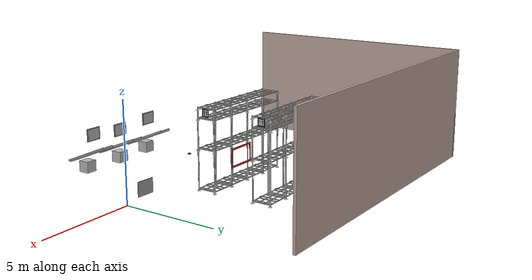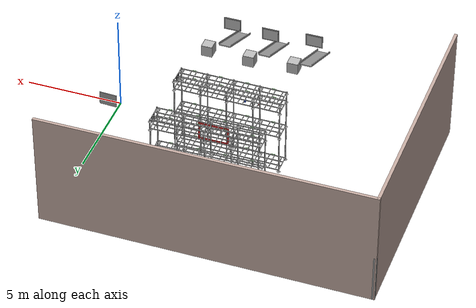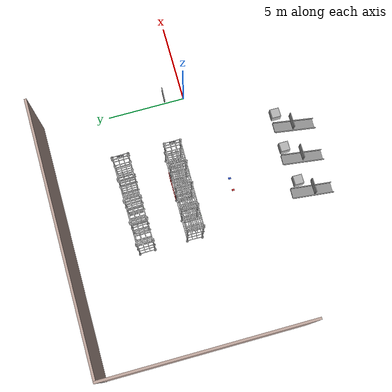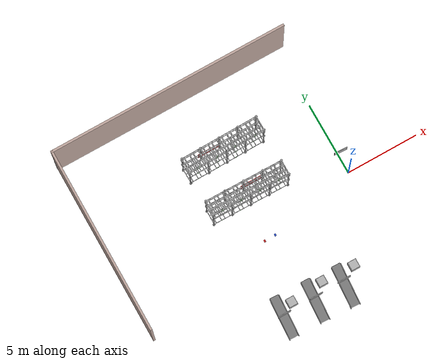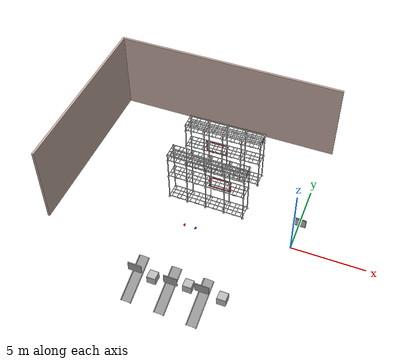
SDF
<sdf version="1.5">
 <world name="default">
  <spherical_coordinates>
   <latitude_deg>48.878922</latitude_deg>
   <longitude_deg>2.367782</longitude_deg>
  </spherical_coordinates>
  <physics type="ode">
   <real_time_update_rate>1000</real_time_update_rate>
   <max_step_size>0.001</max_step_size>
   <real_time_factor>1.0</real_time_factor>
   <max_contacts>20</max_contacts>
   <gravity>0 0 -9.81</gravity>
   <magnetic_field>0.1062e-6 20.8038e-6 -43.2881e-6</magnetic_field>
   <ode>
    <solver>
     <type>world</type>
     <min_step_size>0.0001</min_step_size>
     <iters>50</iters>
     <precon_iters>0</precon_iters>
     <sor>1.4</sor>
     <use_dynamic_moi_rescaling>1</use_dynamic_moi_rescaling>
    </solver>
    <constraints>
     <cfm>0</cfm>
     <erp>0.2</erp>
     <contact_max_correcting_vel>100.0</contact_max_correcting_vel>
     <contact_surface_layer>0.001</contact_surface_layer>
    </constraints>
   </ode>
  </physics>
  <atmosphere type="adiabatic">
   <temperature>298.15</temperature>
   <pressure>101325</pressure>
   <temperature_gradient>-0.0065</temperature_gradient>
  </atmosphere>
  <plugin name="fwman" filename="libsphinx_fwman.so">
   <spawn_point name="default"><pose>0 0 0.2 0 0 0</pose></spawn_point>
  </plugin>
  <plugin name="wind" filename="libsphinx_wind.so">
   <magnitude_mean>0.0</magnitude_mean>
   <direction_mean>0.0</direction_mean>
   <elevation_mean>0.0</elevation_mean>
   <magnitude_time_for_rise>10.0</magnitude_time_for_rise>
   <direction_time_for_rise>30.0</direction_time_for_rise>
   <elevation_time_for_rise>0.0</elevation_time_for_rise>
   <magnitude_expr>val*(1+0.05*sin(2*pi*time/15))</magnitude_expr>
   <direction_expr>360*time/60</direction_expr>
   <elevation_expr>0.03*noise()</elevation_expr>
  </plugin>
  <include><uri>model://sun</uri></include>
  <scene>
   <sky><time>8</time><clouds><speed>12</speed></clouds></sky>
   <grid>false</grid>
   <origin_visual>false</origin_visual>
  </scene>
  <model name="flag">
   <pose>0.130987 1.28522 1.18328 0 -0 3.09547</pose>
   <static>1</static>
   <link name="link">
    <inertial>
     <mass>40</mass>
     <inertia><ixx>1</ixx><ixy>0</ixy><ixz>0</ixz><iyy>1</iyy><iyz>0</iyz><izz>1</izz></inertia>
    </inertial>
    <collision name="collision">
     <geometry><box><size>0.9 0.05 0.7</size></box></geometry>
     <surface><contact><ode><max_vel>0.1</max_vel><min_depth>0.001</min_depth></ode></contact></surface>
    </collision>
    <visual name="visual">
     <geometry><box><size>0.9 0.05 0.7</size></box></geometry>
     <material>
      <script><uri>file://media/materials/scripts/gazebo.material</uri><name>Gazebo/Grey</name></script>
     </material>
    </visual>
    <visual name="visual_qr">
     <pose>0 0.026 0 0 -0 0</pose>
     <geometry><box><size>0.8 0.005 0.6</size></box></geometry>
     <material>
      <script>
       <uri>model://flag/materials/scripts</uri>
       <uri>model://flag/materials/textures</uri>
       <name>Flag/brasil</name>
      </script>
     </material>
    </visual>
   </link>
  </model>
  <model name="shelves imav">
   <static>1</static>
   <link name="link">
    <collision name="collision">
     <geometry>
      <mesh><uri>model://shelves_imav/meshes/shelves_imav_collision.dae</uri><scale>1 1 1</scale></mesh>
     </geometry>
    </collision>
    <visual name="visual">
     <geometry><mesh><uri>model://shelves_imav/meshes/shelves_imav.dae</uri><scale>1 1 1</scale></mesh></geometry>
    </visual>
   </link>
   <pose>-4.40351 4.89325 0 0 0 -3.12564</pose>
  </model>
  <model name="shelves imav_0">
   <static>1</static>
   <link name="link">
    <collision name="collision">
     <geometry>
      <mesh><uri>model://shelves_imav/meshes/shelves_imav_collision.dae</uri><scale>1 1 1</scale></mesh>
     </geometry>
    </collision>
    <visual name="visual">
     <geometry><mesh><uri>model://shelves_imav/meshes/shelves_imav.dae</uri><scale>1 1 1</scale></mesh></geometry>
    </visual>
   </link>
   <pose>-4.4039 1.70735 0 0 -0 3.13132</pose>
  </model>
  <model name="wall_2">
   <pose>-7.83762 2.99617 0 0 -0 0</pose>
   <link name="Wall_2">
    <collision name="Wall_2_Collision">
     <geometry><box><size>0.16 0.15 2.5</size></box></geometry>
     <pose>0 0 1.25 0 -0 0</pose>
    </collision>
    <visual name="Wall_2_Visual">
     <pose>0 0 1.25 0 -0 0</pose>
     <geometry><box><size>0.16 0.15 2.5</size></box></geometry>
     <material>
      <script><uri>file://media/materials/scripts/gazebo.material</uri><name>Gazebo/Grey</name></script>
      <ambient>1 1 1 1</ambient>
     </material>
    </visual>
    <pose>-8.17403 6.29902 0 0 -0 0.023433</pose>
   </link>
   <link name="Wall_3">
    <collision name="Wall_3_Collision">
     <geometry><box><size>16.5 0.15 6</size></box></geometry>
     <pose>0 0 3 0 -0 0</pose>
    </collision>
    <visual name="Wall_3_Visual">
     <pose>0 0 3 0 -0 0</pose>
     <geometry><box><size>16.5 0.15 6</size></box></geometry>
     <material>
      <script><uri>file://media/materials/scripts/gazebo.material</uri><name>Gazebo/Grey</name></script>
      <ambient>0.760784 0.662745 0.627451 1</ambient>
     </material>
    </visual>
    <pose>0.005768 6.29913 0 0 -0 0</pose>
   </link>
   <link name="Wall_5">
    <collision name="Wall_5_Collision">
     <geometry><box><size>12.75 0.15 6</size></box></geometry>
     <pose>0 0 3 0 -0 0</pose>
    </collision>
    <visual name="Wall_5_Visual">
     <pose>0 0 3 0 -0 0</pose>
     <geometry><box><size>12.75 0.15 6</size></box></geometry>
     <material>
      <script><uri>file://media/materials/scripts/gazebo.material</uri><name>Gazebo/Grey</name></script>
      <ambient>0.760784 0.662745 0.627451 1</ambient>
     </material>
    </visual>
    <pose>-8.16923 -0.00087 0 0 0 -1.5708</pose>
   </link>
   <static>1</static>
  </model>
  <model name="ramp">
   <link name="link_0">
    <pose>-0.929825 2.79607 0.5 0 -0 0</pose>
    <inertial>
     <mass>1</mass>
     <inertia>
      <ixx>0.166667</ixx>
      <ixy>0</ixy>
      <ixz>0</ixz>
      <iyy>0.166667</iyy>
      <iyz>0</iyz>
      <izz>0.166667</izz>
     </inertia>
     <pose>0 0 0 0 0.392699 0</pose>
    </inertial>
    <gravity>0</gravity>
    <visual name="visual">
     <pose>0 0 0 0 0.392699 0</pose>
     <geometry><box><size>3 0.6 0.05</size></box></geometry>
     <material>
      <lighting>1</lighting>
      <script><uri>file://media/materials/scripts/gazebo.material</uri><name>Gazebo/Grey</name></script>
      <ambient>0.3 0.3 0.3 1</ambient>
      <diffuse>0.7 0.7 0.7 1</diffuse>
      <specular>0.01 0.01 0.01 1</specular>
      <emissive>0 0 0 1</emissive>
      <shader type="vertex"><normal_map>__default__</normal_map></shader>
     </material>
    </visual>
    <collision name="collision">
     <pose>0 0 0 0 0.392699 0</pose>
     <geometry><box><size>3 0.6 0.05</size></box></geometry>
     <surface>
      <friction>
       <ode><mu>1</mu><mu2>1</mu2><fdir1>0 0 0</fdir1><slip1>0</slip1><slip2>0</slip2></ode>
       <torsional>
        <coefficient>1</coefficient>
        <patch_radius>0</patch_radius>
        <surface_radius>0</surface_radius>
        <use_patch_radius>1</use_patch_radius>
        <ode><slip>0</slip></ode>
       </torsional>
      </friction>
      <bounce><restitution_coefficient>0</restitution_coefficient><threshold>1e+06</threshold></bounce>
      <contact>
       <collide_without_contact>0</collide_without_contact>
       <collide_without_contact_bitmask>1</collide_without_contact_bitmask>
       <collide_bitmask>1</collide_bitmask>
       <ode>
        <soft_cfm>0</soft_cfm>
        <soft_erp>0.2</soft_erp>
        <kp>1e+13</kp>
        <kd>1</kd>
        <max_vel>0.01</max_vel>
        <min_depth>0</min_depth>
       </ode>
       <bullet>
        <split_impulse>1</split_impulse>
        <split_impulse_penetration_threshold>-0.01</split_impulse_penetration_threshold>
        <soft_cfm>0</soft_cfm>
        <soft_erp>0.2</soft_erp>
        <kp>1e+13</kp>
        <kd>1</kd>
       </bullet>
      </contact>
     </surface>
    </collision>
   </link>
   <link name="link_4">
    <pose>-0.874665 2.47136 0.5 0 -0 0</pose>
    <inertial>
     <mass>1</mass>
     <inertia>
      <ixx>0.166667</ixx>
      <ixy>0</ixy>
      <ixz>0</ixz>
      <iyy>0.166667</iyy>
      <iyz>0</iyz>
      <izz>0.166667</izz>
     </inertia>
    </inertial>
    <gravity>0</gravity>
    <visual name="visual">
     <pose>0 0 0.05 0 0.392699 0</pose>
     <geometry><box><size>3 0.05 0.1</size></box></geometry>
     <material>
      <lighting>1</lighting>
      <script><uri>file://media/materials/scripts/gazebo.material</uri><name>Gazebo/Grey</name></script>
      <ambient>0.3 0.3 0.3 1</ambient>
      <diffuse>0.7 0.7 0.7 1</diffuse>
      <specular>0.01 0.01 0.01 1</specular>
      <emissive>0 0 0 1</emissive>
      <shader type="vertex"><normal_map>__default__</normal_map></shader>
     </material>
    </visual>
    <collision name="collision">
     <pose>0 0 0.05 0 0.392699 0</pose>
     <geometry><box><size>3 0.05 0.1</size></box></geometry>
     <surface>
      <friction>
       <ode><mu>1</mu><mu2>1</mu2><fdir1>0 0 0</fdir1><slip1>0</slip1><slip2>0</slip2></ode>
       <torsional>
        <coefficient>1</coefficient>
        <patch_radius>0</patch_radius>
        <surface_radius>0</surface_radius>
        <use_patch_radius>1</use_patch_radius>
        <ode><slip>0</slip></ode>
       </torsional>
      </friction>
      <bounce><restitution_coefficient>0</restitution_coefficient><threshold>1e+06</threshold></bounce>
      <contact>
       <collide_without_contact>0</collide_without_contact>
       <collide_without_contact_bitmask>1</collide_without_contact_bitmask>
       <collide_bitmask>1</collide_bitmask>
       <ode>
        <soft_cfm>0</soft_cfm>
        <soft_erp>0.2</soft_erp>
        <kp>1e+13</kp>
        <kd>1</kd>
        <max_vel>0.01</max_vel>
        <min_depth>0</min_depth>
       </ode>
       <bullet>
        <split_impulse>1</split_impulse>
        <split_impulse_penetration_threshold>-0.01</split_impulse_penetration_threshold>
        <soft_cfm>0</soft_cfm>
        <soft_erp>0.2</soft_erp>
        <kp>1e+13</kp>
        <kd>1</kd>
       </bullet>
      </contact>
     </surface>
    </collision>
   </link>
   <link name="link_4_clone_0">
    <pose>-0.86931 3.11514 0.5 0 -0 0</pose>
    <inertial>
     <mass>1</mass>
     <inertia>
      <ixx>0.166667</ixx>
      <ixy>0</ixy>
      <ixz>0</ixz>
      <iyy>0.166667</iyy>
      <iyz>0</iyz>
      <izz>0.166667</izz>
     </inertia>
    </inertial>
    <visual name="visual">
     <pose>0 0 0.05 0 0.392699 0</pose>
     <geometry><box><size>3 0.05 0.1</size></box></geometry>
     <material>
      <lighting>1</lighting>
      <script><uri>file://media/materials/scripts/gazebo.material</uri><name>Gazebo/Grey</name></script>
      <ambient>0.3 0.3 0.3 1</ambient>
      <diffuse>0.7 0.7 0.7 1</diffuse>
      <specular>0.01 0.01 0.01 1</specular>
      <emissive>0 0 0 1</emissive>
      <shader type="vertex"><normal_map>__default__</normal_map></shader>
     </material>
    </visual>
    <collision name="collision">
     <pose>0 0 0.05 0 0.392699 0</pose>
     <geometry><box><size>3 0.05 0.1</size></box></geometry>
     <surface>
      <friction>
       <ode><mu>1</mu><mu2>1</mu2><fdir1>0 0 0</fdir1><slip1>0</slip1><slip2>0</slip2></ode>
       <torsional>
        <coefficient>1</coefficient>
        <patch_radius>0</patch_radius>
        <surface_radius>0</surface_radius>
        <use_patch_radius>1</use_patch_radius>
        <ode><slip>0</slip></ode>
       </torsional>
      </friction>
      <bounce><restitution_coefficient>0</restitution_coefficient><threshold>1e+06</threshold></bounce>
      <contact>
       <collide_without_contact>0</collide_without_contact>
       <collide_without_contact_bitmask>1</collide_without_contact_bitmask>
       <collide_bitmask>1</collide_bitmask>
       <ode>
        <soft_cfm>0</soft_cfm>
        <soft_erp>0.2</soft_erp>
        <kp>1e+13</kp>
        <kd>1</kd>
        <max_vel>0.01</max_vel>
        <min_depth>0</min_depth>
       </ode>
       <bullet>
        <split_impulse>1</split_impulse>
        <split_impulse_penetration_threshold>-0.01</split_impulse_penetration_threshold>
        <soft_cfm>0</soft_cfm>
        <soft_erp>0.2</soft_erp>
        <kp>1e+13</kp>
        <kd>1</kd>
       </bullet>
      </contact>
     </surface>
    </collision>
   </link>
   <static>1</static>
   <pose>-10.9877 -6.9727 0 0 0 -1.59868</pose>
  </model>
  <model name="ramp_clone">
   <link name="link_0">
    <pose>-0.929825 2.79607 0.5 0 -0 0</pose>
    <inertial>
     <mass>1</mass>
     <inertia>
      <ixx>0.166667</ixx>
      <ixy>0</ixy>
      <ixz>0</ixz>
      <iyy>0.166667</iyy>
      <iyz>0</iyz>
      <izz>0.166667</izz>
     </inertia>
     <pose>0 0 0 0 0.392699 0</pose>
    </inertial>
    <gravity>0</gravity>
    <visual name="visual">
     <pose>0 0 0 0 0.392699 0</pose>
     <geometry><box><size>3 0.6 0.05</size></box></geometry>
     <material>
      <lighting>1</lighting>
      <script><uri>file://media/materials/scripts/gazebo.material</uri><name>Gazebo/Grey</name></script>
      <ambient>0.3 0.3 0.3 1</ambient>
      <diffuse>0.7 0.7 0.7 1</diffuse>
      <specular>0.01 0.01 0.01 1</specular>
      <emissive>0 0 0 1</emissive>
      <shader type="vertex"><normal_map>__default__</normal_map></shader>
     </material>
    </visual>
    <collision name="collision">
     <pose>0 0 0 0 0.392699 0</pose>
     <geometry><box><size>3 0.6 0.05</size></box></geometry>
     <surface>
      <friction>
       <ode><mu>1</mu><mu2>1</mu2><fdir1>0 0 0</fdir1><slip1>0</slip1><slip2>0</slip2></ode>
       <torsional>
        <coefficient>1</coefficient>
        <patch_radius>0</patch_radius>
        <surface_radius>0</surface_radius>
        <use_patch_radius>1</use_patch_radius>
        <ode><slip>0</slip></ode>
       </torsional>
      </friction>
      <bounce><restitution_coefficient>0</restitution_coefficient><threshold>1e+06</threshold></bounce>
      <contact>
       <collide_without_contact>0</collide_without_contact>
       <collide_without_contact_bitmask>1</collide_without_contact_bitmask>
       <collide_bitmask>1</collide_bitmask>
       <ode>
        <soft_cfm>0</soft_cfm>
        <soft_erp>0.2</soft_erp>
        <kp>1e+13</kp>
        <kd>1</kd>
        <max_vel>0.01</max_vel>
        <min_depth>0</min_depth>
       </ode>
       <bullet>
        <split_impulse>1</split_impulse>
        <split_impulse_penetration_threshold>-0.01</split_impulse_penetration_threshold>
        <soft_cfm>0</soft_cfm>
        <soft_erp>0.2</soft_erp>
        <kp>1e+13</kp>
        <kd>1</kd>
       </bullet>
      </contact>
     </surface>
    </collision>
   </link>
   <link name="link_4">
    <pose>-0.874665 2.47136 0.5 0 -0 0</pose>
    <inertial>
     <mass>1</mass>
     <inertia>
      <ixx>0.166667</ixx>
      <ixy>0</ixy>
      <ixz>0</ixz>
      <iyy>0.166667</iyy>
      <iyz>0</iyz>
      <izz>0.166667</izz>
     </inertia>
    </inertial>
    <gravity>0</gravity>
    <visual name="visual">
     <pose>0 0 0.05 0 0.392699 0</pose>
     <geometry><box><size>3 0.05 0.1</size></box></geometry>
     <material>
      <lighting>1</lighting>
      <script><uri>file://media/materials/scripts/gazebo.material</uri><name>Gazebo/Grey</name></script>
      <ambient>0.3 0.3 0.3 1</ambient>
      <diffuse>0.7 0.7 0.7 1</diffuse>
      <specular>0.01 0.01 0.01 1</specular>
      <emissive>0 0 0 1</emissive>
      <shader type="vertex"><normal_map>__default__</normal_map></shader>
     </material>
    </visual>
    <collision name="collision">
     <pose>0 0 0.05 0 0.392699 0</pose>
     <geometry><box><size>3 0.05 0.1</size></box></geometry>
     <surface>
      <friction>
       <ode><mu>1</mu><mu2>1</mu2><fdir1>0 0 0</fdir1><slip1>0</slip1><slip2>0</slip2></ode>
       <torsional>
        <coefficient>1</coefficient>
        <patch_radius>0</patch_radius>
        <surface_radius>0</surface_radius>
        <use_patch_radius>1</use_patch_radius>
        <ode><slip>0</slip></ode>
       </torsional>
      </friction>
      <bounce><restitution_coefficient>0</restitution_coefficient><threshold>1e+06</threshold></bounce>
      <contact>
       <collide_without_contact>0</collide_without_contact>
       <collide_without_contact_bitmask>1</collide_without_contact_bitmask>
       <collide_bitmask>1</collide_bitmask>
       <ode>
        <soft_cfm>0</soft_cfm>
        <soft_erp>0.2</soft_erp>
        <kp>1e+13</kp>
        <kd>1</kd>
        <max_vel>0.01</max_vel>
        <min_depth>0</min_depth>
       </ode>
       <bullet>
        <split_impulse>1</split_impulse>
        <split_impulse_penetration_threshold>-0.01</split_impulse_penetration_threshold>
        <soft_cfm>0</soft_cfm>
        <soft_erp>0.2</soft_erp>
        <kp>1e+13</kp>
        <kd>1</kd>
       </bullet>
      </contact>
     </surface>
    </collision>
   </link>
   <link name="link_4_clone_0">
    <pose>-0.86931 3.11514 0.5 0 -0 0</pose>
    <inertial>
     <mass>1</mass>
     <inertia>
      <ixx>0.166667</ixx>
      <ixy>0</ixy>
      <ixz>0</ixz>
      <iyy>0.166667</iyy>
      <iyz>0</iyz>
      <izz>0.166667</izz>
     </inertia>
    </inertial>
    <visual name="visual">
     <pose>0 0 0.05 0 0.392699 0</pose>
     <geometry><box><size>3 0.05 0.1</size></box></geometry>
     <material>
      <lighting>1</lighting>
      <script><uri>file://media/materials/scripts/gazebo.material</uri><name>Gazebo/Grey</name></script>
      <ambient>0.3 0.3 0.3 1</ambient>
      <diffuse>0.7 0.7 0.7 1</diffuse>
      <specular>0.01 0.01 0.01 1</specular>
      <emissive>0 0 0 1</emissive>
      <shader type="vertex"><normal_map>__default__</normal_map></shader>
     </material>
    </visual>
    <collision name="collision">
     <pose>0 0 0.05 0 0.392699 0</pose>
     <geometry><box><size>3 0.05 0.1</size></box></geometry>
     <surface>
      <friction>
       <ode><mu>1</mu><mu2>1</mu2><fdir1>0 0 0</fdir1><slip1>0</slip1><slip2>0</slip2></ode>
       <torsional>
        <coefficient>1</coefficient>
        <patch_radius>0</patch_radius>
        <surface_radius>0</surface_radius>
        <use_patch_radius>1</use_patch_radius>
        <ode><slip>0</slip></ode>
       </torsional>
      </friction>
      <bounce><restitution_coefficient>0</restitution_coefficient><threshold>1e+06</threshold></bounce>
      <contact>
       <collide_without_contact>0</collide_without_contact>
       <collide_without_contact_bitmask>1</collide_without_contact_bitmask>
       <collide_bitmask>1</collide_bitmask>
       <ode>
        <soft_cfm>0</soft_cfm>
        <soft_erp>0.2</soft_erp>
        <kp>1e+13</kp>
        <kd>1</kd>
        <max_vel>0.01</max_vel>
        <min_depth>0</min_depth>
       </ode>
       <bullet>
        <split_impulse>1</split_impulse>
        <split_impulse_penetration_threshold>-0.01</split_impulse_penetration_threshold>
        <soft_cfm>0</soft_cfm>
        <soft_erp>0.2</soft_erp>
        <kp>1e+13</kp>
        <kd>1</kd>
       </bullet>
      </contact>
     </surface>
    </collision>
   </link>
   <static>1</static>
   <pose>-8.76287 -7.02173 0 0 0 -1.59868</pose>
  </model>
  <model name="ramp_clone_0">
   <link name="link_0">
    <pose>-0.929825 2.79607 0.5 0 -0 0</pose>
    <inertial>
     <mass>1</mass>
     <inertia>
      <ixx>0.166667</ixx>
      <ixy>0</ixy>
      <ixz>0</ixz>
      <iyy>0.166667</iyy>
      <iyz>0</iyz>
      <izz>0.166667</izz>
     </inertia>
     <pose>0 0 0 0 0.392699 0</pose>
    </inertial>
    <gravity>0</gravity>
    <visual name="visual">
     <pose>0 0 0 0 0.392699 0</pose>
     <geometry><box><size>3 0.6 0.05</size></box></geometry>
     <material>
      <lighting>1</lighting>
      <script><uri>file://media/materials/scripts/gazebo.material</uri><name>Gazebo/Grey</name></script>
      <ambient>0.3 0.3 0.3 1</ambient>
      <diffuse>0.7 0.7 0.7 1</diffuse>
      <specular>0.01 0.01 0.01 1</specular>
      <emissive>0 0 0 1</emissive>
      <shader type="vertex"><normal_map>__default__</normal_map></shader>
     </material>
    </visual>
    <collision name="collision">
     <pose>0 0 0 0 0.392699 0</pose>
     <geometry><box><size>3 0.6 0.05</size></box></geometry>
     <surface>
      <friction>
       <ode><mu>1</mu><mu2>1</mu2><fdir1>0 0 0</fdir1><slip1>0</slip1><slip2>0</slip2></ode>
       <torsional>
        <coefficient>1</coefficient>
        <patch_radius>0</patch_radius>
        <surface_radius>0</surface_radius>
        <use_patch_radius>1</use_patch_radius>
        <ode><slip>0</slip></ode>
       </torsional>
      </friction>
      <bounce><restitution_coefficient>0</restitution_coefficient><threshold>1e+06</threshold></bounce>
      <contact>
       <collide_without_contact>0</collide_without_contact>
       <collide_without_contact_bitmask>1</collide_without_contact_bitmask>
       <collide_bitmask>1</collide_bitmask>
       <ode>
        <soft_cfm>0</soft_cfm>
        <soft_erp>0.2</soft_erp>
        <kp>1e+13</kp>
        <kd>1</kd>
        <max_vel>0.01</max_vel>
        <min_depth>0</min_depth>
       </ode>
       <bullet>
        <split_impulse>1</split_impulse>
        <split_impulse_penetration_threshold>-0.01</split_impulse_penetration_threshold>
        <soft_cfm>0</soft_cfm>
        <soft_erp>0.2</soft_erp>
        <kp>1e+13</kp>
        <kd>1</kd>
       </bullet>
      </contact>
     </surface>
    </collision>
   </link>
   <link name="link_4">
    <pose>-0.874665 2.47136 0.5 0 -0 0</pose>
    <inertial>
     <mass>1</mass>
     <inertia>
      <ixx>0.166667</ixx>
      <ixy>0</ixy>
      <ixz>0</ixz>
      <iyy>0.166667</iyy>
      <iyz>0</iyz>
      <izz>0.166667</izz>
     </inertia>
    </inertial>
    <gravity>0</gravity>
    <visual name="visual">
     <pose>0 0 0.05 0 0.392699 0</pose>
     <geometry><box><size>3 0.05 0.1</size></box></geometry>
     <material>
      <lighting>1</lighting>
      <script><uri>file://media/materials/scripts/gazebo.material</uri><name>Gazebo/Grey</name></script>
      <ambient>0.3 0.3 0.3 1</ambient>
      <diffuse>0.7 0.7 0.7 1</diffuse>
      <specular>0.01 0.01 0.01 1</specular>
      <emissive>0 0 0 1</emissive>
      <shader type="vertex"><normal_map>__default__</normal_map></shader>
     </material>
    </visual>
    <collision name="collision">
     <pose>0 0 0.05 0 0.392699 0</pose>
     <geometry><box><size>3 0.05 0.1</size></box></geometry>
     <surface>
      <friction>
       <ode><mu>1</mu><mu2>1</mu2><fdir1>0 0 0</fdir1><slip1>0</slip1><slip2>0</slip2></ode>
       <torsional>
        <coefficient>1</coefficient>
        <patch_radius>0</patch_radius>
        <surface_radius>0</surface_radius>
        <use_patch_radius>1</use_patch_radius>
        <ode><slip>0</slip></ode>
       </torsional>
      </friction>
      <bounce><restitution_coefficient>0</restitution_coefficient><threshold>1e+06</threshold></bounce>
      <contact>
       <collide_without_contact>0</collide_without_contact>
       <collide_without_contact_bitmask>1</collide_without_contact_bitmask>
       <collide_bitmask>1</collide_bitmask>
       <ode>
        <soft_cfm>0</soft_cfm>
        <soft_erp>0.2</soft_erp>
        <kp>1e+13</kp>
        <kd>1</kd>
        <max_vel>0.01</max_vel>
        <min_depth>0</min_depth>
       </ode>
       <bullet>
        <split_impulse>1</split_impulse>
        <split_impulse_penetration_threshold>-0.01</split_impulse_penetration_threshold>
        <soft_cfm>0</soft_cfm>
        <soft_erp>0.2</soft_erp>
        <kp>1e+13</kp>
        <kd>1</kd>
       </bullet>
      </contact>
     </surface>
    </collision>
   </link>
   <link name="link_4_clone_0">
    <pose>-0.86931 3.11514 0.5 0 -0 0</pose>
    <inertial>
     <mass>1</mass>
     <inertia>
      <ixx>0.166667</ixx>
      <ixy>0</ixy>
      <ixz>0</ixz>
      <iyy>0.166667</iyy>
      <iyz>0</iyz>
      <izz>0.166667</izz>
     </inertia>
    </inertial>
    <visual name="visual">
     <pose>0 0 0.05 0 0.392699 0</pose>
     <geometry><box><size>3 0.05 0.1</size></box></geometry>
     <material>
      <lighting>1</lighting>
      <script><uri>file://media/materials/scripts/gazebo.material</uri><name>Gazebo/Grey</name></script>
      <ambient>0.3 0.3 0.3 1</ambient>
      <diffuse>0.7 0.7 0.7 1</diffuse>
      <specular>0.01 0.01 0.01 1</specular>
      <emissive>0 0 0 1</emissive>
      <shader type="vertex"><normal_map>__default__</normal_map></shader>
     </material>
    </visual>
    <collision name="collision">
     <pose>0 0 0.05 0 0.392699 0</pose>
     <geometry><box><size>3 0.05 0.1</size></box></geometry>
     <surface>
      <friction>
       <ode><mu>1</mu><mu2>1</mu2><fdir1>0 0 0</fdir1><slip1>0</slip1><slip2>0</slip2></ode>
       <torsional>
        <coefficient>1</coefficient>
        <patch_radius>0</patch_radius>
        <surface_radius>0</surface_radius>
        <use_patch_radius>1</use_patch_radius>
        <ode><slip>0</slip></ode>
       </torsional>
      </friction>
      <bounce><restitution_coefficient>0</restitution_coefficient><threshold>1e+06</threshold></bounce>
      <contact>
       <collide_without_contact>0</collide_without_contact>
       <collide_without_contact_bitmask>1</collide_without_contact_bitmask>
       <collide_bitmask>1</collide_bitmask>
       <ode>
        <soft_cfm>0</soft_cfm>
        <soft_erp>0.2</soft_erp>
        <kp>1e+13</kp>
        <kd>1</kd>
        <max_vel>0.01</max_vel>
        <min_depth>0</min_depth>
       </ode>
       <bullet>
        <split_impulse>1</split_impulse>
        <split_impulse_penetration_threshold>-0.01</split_impulse_penetration_threshold>
        <soft_cfm>0</soft_cfm>
        <soft_erp>0.2</soft_erp>
        <kp>1e+13</kp>
        <kd>1</kd>
       </bullet>
      </contact>
     </surface>
    </collision>
   </link>
   <static>1</static>
   <pose>-6.61032 -7.12271 0 0 0 -1.59868</pose>
  </model>
  <model name="recharging_base">
   <pose>-7.27788 -5.51099 0.3 0 -0 0</pose>
   <static>1</static>
   <link name="link">
    <inertial>
     <mass>40</mass>
     <inertia><ixx>1</ixx><ixy>0</ixy><ixz>0</ixz><iyy>1</iyy><iyz>0</iyz><izz>1</izz></inertia>
    </inertial>
    <collision name="collision">
     <geometry><box><size>0.6 0.6 0.6</size></box></geometry>
     <surface><contact><ode><max_vel>0.1</max_vel><min_depth>0.001</min_depth></ode></contact></surface>
    </collision>
    <visual name="visual">
     <geometry><box><size>0.6 0.6 0.6</size></box></geometry>
     <material>
      <script><uri>file://media/materials/scripts/gazebo.material</uri><name>Gazebo/Lanes_2</name></script>
     </material>
    </visual>
    <visual name="visual_H">
     <pose>0 0 0.3 0 -0 0</pose>
     <geometry><box><size>0.55 0.55 0.005</size></box></geometry>
     <material>
      <script>
       <uri>model://recharging_base/materials/scripts</uri>
       <uri>model://recharging_base/materials/textures</uri>
       <name>Base/H</name>
      </script>
     </material>
    </visual>
   </link>
  </model>
  <model name="recharging_base_0">
   <pose>-4.97002 -5.29929 0.3 0 -0 0</pose>
   <static>1</static>
   <link name="link">
    <inertial>
     <mass>40</mass>
     <inertia><ixx>1</ixx><ixy>0</ixy><ixz>0</ixz><iyy>1</iyy><iyz>0</iyz><izz>1</izz></inertia>
    </inertial>
    <collision name="collision">
     <geometry><box><size>0.6 0.6 0.6</size></box></geometry>
     <surface><contact><ode><max_vel>0.1</max_vel><min_depth>0.001</min_depth></ode></contact></surface>
    </collision>
    <visual name="visual">
     <geometry><box><size>0.6 0.6 0.6</size></box></geometry>
     <material>
      <script><uri>file://media/materials/scripts/gazebo.material</uri><name>Gazebo/Lanes_2</name></script>
     </material>
    </visual>
    <visual name="visual_H">
     <pose>0 0 0.3 0 -0 0</pose>
     <geometry><box><size>0.55 0.55 0.005</size></box></geometry>
     <material>
      <script>
       <uri>model://recharging_base/materials/scripts</uri>
       <uri>model://recharging_base/materials/textures</uri>
       <name>Base/H</name>
      </script>
     </material>
    </visual>
   </link>
  </model>
  <model name="recharging_base_1">
   <pose>-2.68666 -5.38323 0.3 0 -0 0</pose>
   <static>1</static>
   <link name="link">
    <inertial>
     <mass>40</mass>
     <inertia><ixx>1</ixx><ixy>0</ixy><ixz>0</ixz><iyy>1</iyy><iyz>0</iyz><izz>1</izz></inertia>
    </inertial>
    <collision name="collision">
     <geometry><box><size>0.6 0.6 0.6</size></box></geometry>
     <surface><contact><ode><max_vel>0.1</max_vel><min_depth>0.001</min_depth></ode></contact></surface>
    </collision>
    <visual name="visual">
     <geometry><box><size>0.6 0.6 0.6</size></box></geometry>
     <material>
      <script><uri>file://media/materials/scripts/gazebo.material</uri><name>Gazebo/Lanes_2</name></script>
     </material>
    </visual>
    <visual name="visual_H">
     <pose>0 0 0.3 0 -0 0</pose>
     <geometry><box><size>0.55 0.55 0.005</size></box></geometry>
     <material>
      <script>
       <uri>model://recharging_base/materials/scripts</uri>
       <uri>model://recharging_base/materials/textures</uri>
       <name>Base/H</name>
      </script>
     </material>
    </visual>
   </link>
  </model>
  <model name="flag2_0">
   <pose>-8.13931 -6.08401 1.66665 0 -0 0</pose>
   <static>1</static>
   <link name="link">
    <inertial>
     <mass>40</mass>
     <inertia><ixx>1</ixx><ixy>0</ixy><ixz>0</ixz><iyy>1</iyy><iyz>0</iyz><izz>1</izz></inertia>
    </inertial>
    <collision name="collision">
     <geometry><box><size>0.9 0.05 0.7</size></box></geometry>
     <surface><contact><ode><max_vel>0.1</max_vel><min_depth>0.001</min_depth></ode></contact></surface>
    </collision>
    <visual name="visual">
     <geometry><box><size>0.9 0.05 0.7</size></box></geometry>
     <material>
      <script><uri>file://media/materials/scripts/gazebo.material</uri><name>Gazebo/Grey</name></script>
     </material>
    </visual>
    <visual name="visual_qr">
     <pose>0 0.026 0 0 -0 0</pose>
     <geometry><box><size>0.8 0.005 0.6</size></box></geometry>
     <material>
      <script>
       <uri>model://flag2/materials/scripts</uri>
       <uri>model://flag2/materials/textures</uri>
       <name>Flag/spain</name>
      </script>
     </material>
    </visual>
   </link>
  </model>
  <model name="flag2_0_clone">
   <pose>-3.78286 -6.01004 1.66665 0 -0 0</pose>
   <static>1</static>
   <link name="link">
    <inertial>
     <mass>40</mass>
     <inertia><ixx>1</ixx><ixy>0</ixy><ixz>0</ixz><iyy>1</iyy><iyz>0</iyz><izz>1</izz></inertia>
    </inertial>
    <collision name="collision">
     <geometry><box><size>0.9 0.05 0.7</size></box></geometry>
     <surface><contact><ode><max_vel>0.1</max_vel><min_depth>0.001</min_depth></ode></contact></surface>
    </collision>
    <visual name="visual">
     <geometry><box><size>0.9 0.05 0.7</size></box></geometry>
     <material>
      <script><uri>file://media/materials/scripts/gazebo.material</uri><name>Gazebo/Grey</name></script>
     </material>
    </visual>
    <visual name="visual_qr">
     <pose>0 0.026 0 0 -0 0</pose>
     <geometry><box><size>0.8 0.005 0.6</size></box></geometry>
     <material>
      <script>
       <uri>model://flag2/materials/scripts</uri>
       <uri>model://flag2/materials/textures</uri>
       <name>Flag/spain</name>
      </script>
     </material>
    </visual>
   </link>
  </model>
  <model name="flag_0">
   <pose>-5.81372 -6.0554 1.48696 0 -0 0</pose>
   <static>1</static>
   <link name="link">
    <inertial>
     <mass>40</mass>
     <inertia><ixx>1</ixx><ixy>0</ixy><ixz>0</ixz><iyy>1</iyy><iyz>0</iyz><izz>1</izz></inertia>
    </inertial>
    <collision name="collision">
     <geometry><box><size>0.9 0.05 0.7</size></box></geometry>
     <surface><contact><ode><max_vel>0.1</max_vel><min_depth>0.001</min_depth></ode></contact></surface>
    </collision>
    <visual name="visual">
     <geometry><box><size>0.9 0.05 0.7</size></box></geometry>
     <material>
      <script><uri>file://media/materials/scripts/gazebo.material</uri><name>Gazebo/Grey</name></script>
     </material>
    </visual>
    <visual name="visual_qr">
     <pose>0 0.026 0 0 -0 0</pose>
     <geometry><box><size>0.8 0.005 0.6</size></box></geometry>
     <material>
      <script>
       <uri>model://flag/materials/scripts</uri>
       <uri>model://flag/materials/textures</uri>
       <name>Flag/brasil</name>
      </script>
     </material>
    </visual>
   </link>
  </model>
  <model name="box indoor small blue">
   <pose>-6.10537 -1.32723 0.801445 0 0.001046 0</pose>
   <static>0</static>
   <link name="link">
    <inertial>
     <mass>0.057</mass>
     <inertia><ixx>1</ixx><ixy>0</ixy><ixz>0</ixz><iyy>1</iyy><iyz>0</iyz><izz>1</izz></inertia>
    </inertial>
    <collision name="collision">
     <geometry><box><size>0.105 0.155 0.053</size></box></geometry>
     <surface><contact><ode><max_vel>0.1</max_vel><min_depth>0.001</min_depth></ode></contact></surface>
    </collision>
    <visual name="visual">
     <geometry><box><size>0.105 0.155 0.053</size></box></geometry>
     <material>
      <script><uri>file://media/materials/scripts/gazebo.material</uri><name>Gazebo/Blue</name></script>
     </material>
    </visual>
   </link>
  </model>
  <model name="box indoor small red">
   <pose>-6.87534 -1.33932 0.80148 1e-06 0.00038 0</pose>
   <static>0</static>
   <link name="link">
    <inertial>
     <mass>0.057</mass>
     <inertia><ixx>1</ixx><ixy>0</ixy><ixz>0</ixz><iyy>1</iyy><iyz>0</iyz><izz>1</izz></inertia>
    </inertial>
    <collision name="collision">
     <geometry><box><size>0.105 0.155 0.053</size></box></geometry>
     <surface><contact><ode><max_vel>0.1</max_vel><min_depth>0.001</min_depth></ode></contact></surface>
    </collision>
    <visual name="visual">
     <geometry><box><size>0.105 0.155 0.053</size></box></geometry>
     <material>
      <script><uri>file://media/materials/scripts/gazebo.material</uri><name>Gazebo/Red</name></script>
     </material>
    </visual>
   </link>
  </model>
  <model name="frame">
   <pose>-7.15563 5.37223 1.00176 0 -0 0</pose>
   <static>1</static>
   <link name="top">
    <collision name="collision_t">
     <pose>0 0 0.9 0 -0 0</pose>
     <geometry><box><size>1.6 0.02 0.1</size></box></geometry>
     <surface><contact><ode><max_vel>0.1</max_vel><min_depth>0.001</min_depth></ode></contact></surface>
    </collision>
    <visual name="visual_t">
     <pose>0 0 0.9 0 -0 0</pose>
     <geometry><box><size>1.6 0.02 0.1</size></box></geometry>
     <material>
      <lighting>1</lighting>
      <script><uri>file://media/materials/scripts/gazebo.material</uri><name>Gazebo/Red</name></script>
      <shader type="pixel"><normal_map>__default__</normal_map></shader>
     </material>
    </visual>
    <collision name="collision_b">
     <geometry><box><size>1.6 0.02 0.1</size></box></geometry>
     <surface><contact><ode><max_vel>0.1</max_vel><min_depth>0.001</min_depth></ode></contact></surface>
    </collision>
    <visual name="visual_b">
     <geometry><box><size>1.6 0.02 0.1</size></box></geometry>
     <material>
      <lighting>1</lighting>
      <script><uri>file://media/materials/scripts/gazebo.material</uri><name>Gazebo/Red</name></script>
      <shader type="pixel"><normal_map>__default__</normal_map></shader>
     </material>
    </visual>
    <collision name="collision_l">
     <pose>0.75 0 0.45 0 -0 0</pose>
     <geometry><box><size>0.1 0.02 0.8</size></box></geometry>
     <surface><contact><ode><max_vel>0.1</max_vel><min_depth>0.001</min_depth></ode></contact></surface>
    </collision>
    <visual name="visual_l">
     <pose>0.75 0 0.45 0 -0 0</pose>
     <geometry><box><size>0.1 0.02 0.8</size></box></geometry>
     <material>
      <lighting>1</lighting>
      <script><uri>file://media/materials/scripts/gazebo.material</uri><name>Gazebo/Red</name></script>
      <shader type="pixel"><normal_map>__default__</normal_map></shader>
     </material>
    </visual>
    <collision name="collision_r">
     <pose>-0.75 0 0.45 0 -0 0</pose>
     <geometry><box><size>0.1 0.02 0.8</size></box></geometry>
     <surface><contact><ode><max_vel>0.1</max_vel><min_depth>0.001</min_depth></ode></contact></surface>
    </collision>
    <visual name="visual_r">
     <pose>-0.75 0 0.45 0 -0 0</pose>
     <geometry><box><size>0.1 0.02 0.8</size></box></geometry>
     <material>
      <lighting>1</lighting>
      <script><uri>file://media/materials/scripts/gazebo.material</uri><name>Gazebo/Red</name></script>
      <shader type="pixel"><normal_map>__default__</normal_map></shader>
     </material>
    </visual>
   </link>
  </model>
  <model name="frame_0">
   <pose>-5.77433 2.29444 0.960251 0 -0 0</pose>
   <static>1</static>
   <link name="top">
    <collision name="collision_t">
     <pose>0 0 0.9 0 -0 0</pose>
     <geometry><box><size>1.6 0.02 0.1</size></box></geometry>
     <surface><contact><ode><max_vel>0.1</max_vel><min_depth>0.001</min_depth></ode></contact></surface>
    </collision>
    <visual name="visual_t">
     <pose>0 0 0.9 0 -0 0</pose>
     <geometry><box><size>1.6 0.02 0.1</size></box></geometry>
     <material>
      <lighting>1</lighting>
      <script><uri>file://media/materials/scripts/gazebo.material</uri><name>Gazebo/Red</name></script>
      <shader type="pixel"><normal_map>__default__</normal_map></shader>
     </material>
    </visual>
    <collision name="collision_b">
     <geometry><box><size>1.6 0.02 0.1</size></box></geometry>
     <surface><contact><ode><max_vel>0.1</max_vel><min_depth>0.001</min_depth></ode></contact></surface>
    </collision>
    <visual name="visual_b">
     <geometry><box><size>1.6 0.02 0.1</size></box></geometry>
     <material>
      <lighting>1</lighting>
      <script><uri>file://media/materials/scripts/gazebo.material</uri><name>Gazebo/Red</name></script>
      <shader type="pixel"><normal_map>__default__</normal_map></shader>
     </material>
    </visual>
    <collision name="collision_l">
     <pose>0.75 0 0.45 0 -0 0</pose>
     <geometry><box><size>0.1 0.02 0.8</size></box></geometry>
     <surface><contact><ode><max_vel>0.1</max_vel><min_depth>0.001</min_depth></ode></contact></surface>
    </collision>
    <visual name="visual_l">
     <pose>0.75 0 0.45 0 -0 0</pose>
     <geometry><box><size>0.1 0.02 0.8</size></box></geometry>
     <material>
      <lighting>1</lighting>
      <script><uri>file://media/materials/scripts/gazebo.material</uri><name>Gazebo/Red</name></script>
      <shader type="pixel"><normal_map>__default__</normal_map></shader>
     </material>
    </visual>
    <collision name="collision_r">
     <pose>-0.75 0 0.45 0 -0 0</pose>
     <geometry><box><size>0.1 0.02 0.8</size></box></geometry>
     <surface><contact><ode><max_vel>0.1</max_vel><min_depth>0.001</min_depth></ode></contact></surface>
    </collision>
    <visual name="visual_r">
     <pose>-0.75 0 0.45 0 -0 0</pose>
     <geometry><box><size>0.1 0.02 0.8</size></box></geometry>
     <material>
      <lighting>1</lighting>
      <script><uri>file://media/materials/scripts/gazebo.material</uri><name>Gazebo/Red</name></script>
      <shader type="pixel"><normal_map>__default__</normal_map></shader>
     </material>
    </visual>
   </link>
  </model>
 </world>
</sdf>
